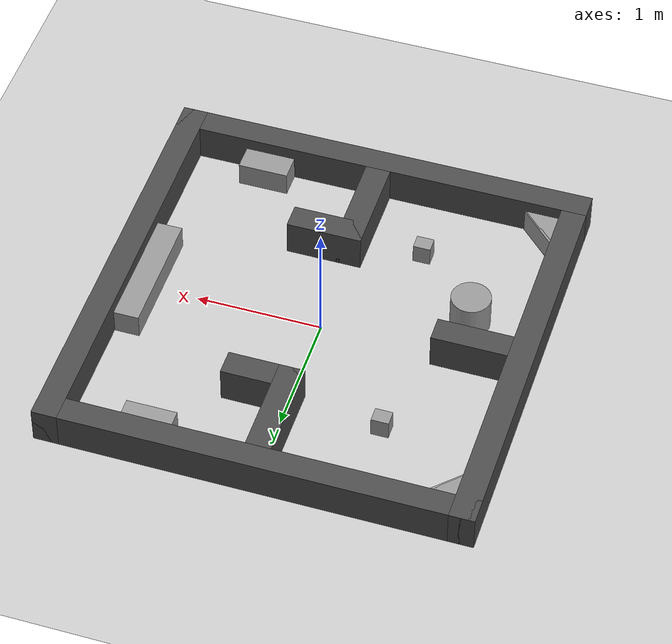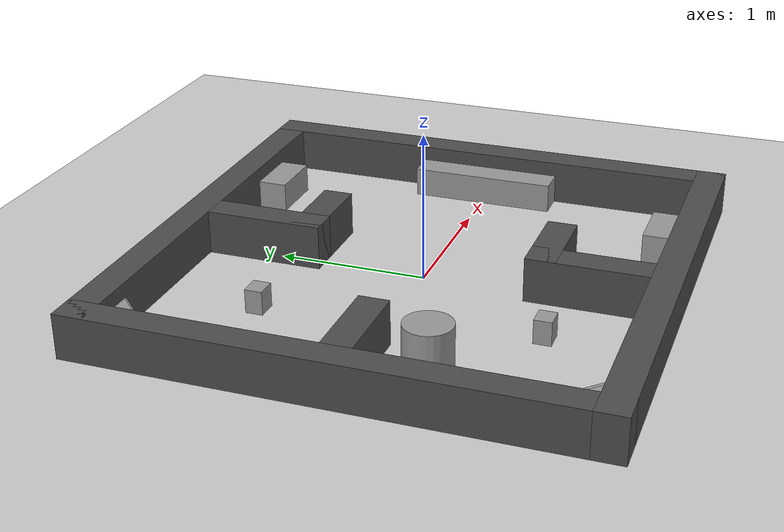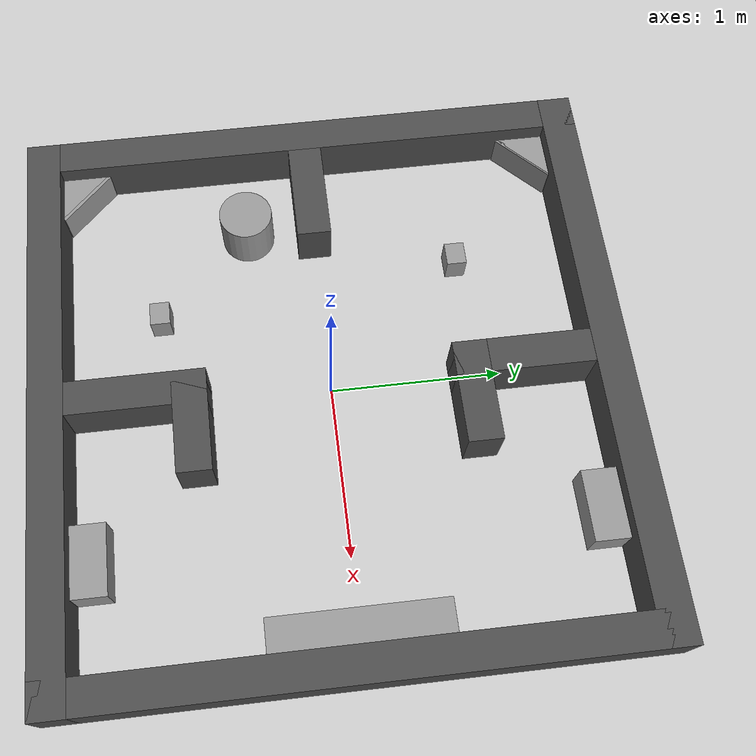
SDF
<sdf version="1.7">
 <world name="default">
  <light name="sun" type="directional">
   <pose>0 0 10 0 -0 0</pose>
   <diffuse>0.8 0.8 0.8 1</diffuse>
   <specular>0.1 0.1 0.1 1</specular>
   <attenuation>
    <range>1000</range>
    <constant>0.9</constant>
    <linear>0.01</linear>
    <quadratic>0.001</quadratic>
   </attenuation>
   <direction>-0.5 0.5 -1</direction>
   <spot><inner_angle>0</inner_angle><outer_angle>0</outer_angle><falloff>0</falloff></spot>
  </light>
  <model name="ground_plane">
   <static>1</static>
   <link name="link">
    <collision name="collision">
     <geometry><plane><normal>0 0 1</normal><size>100 100</size></plane></geometry>
     <surface><friction><ode><mu>100</mu><mu2>50</mu2></ode></friction></surface>
    </collision>
    <visual name="visual">
     <cast_shadows>0</cast_shadows>
     <geometry><plane><normal>0 0 1</normal><size>100 100</size></plane></geometry>
     <material>
      <script><uri>file://media/materials/scripts/gazebo.material</uri><name>Gazebo/Grey</name></script>
     </material>
    </visual>
   </link>
  </model>
  <gravity>0 0 -9.8</gravity>
  <magnetic_field>6e-06 2.3e-05 -4.2e-05</magnetic_field>
  <atmosphere type="adiabatic"/>
  <physics name="default_physics" default="0" type="ode">
   <max_step_size>0.001</max_step_size>
   <real_time_factor>1</real_time_factor>
   <real_time_update_rate>1000</real_time_update_rate>
  </physics>
  <scene><ambient>0.4 0.4 0.4 1</ambient><background>0.7 0.7 0.7 1</background><shadows>0</shadows></scene>
  <spherical_coordinates>
   <surface_model>EARTH_WGS84</surface_model>
   <latitude_deg>0</latitude_deg>
   <longitude_deg>0</longitude_deg>
   <elevation>0</elevation>
   <heading_deg>0</heading_deg>
  </spherical_coordinates>
  <model name="competition_room_final">
   <link name="Wall_13">
    <collision name="Wall_13_Collision">
     <geometry><box><size>3.4 0.2 0.3</size></box></geometry>
     <pose>0 0 0.15 0 -0 0</pose>
    </collision>
    <visual name="Wall_13_Visual">
     <pose>0 0 0.15 0 -0 0</pose>
     <geometry><box><size>3.4 0.2 0.3</size></box></geometry>
     <material>
      <script><uri>file://media/materials/scripts/gazebo.material</uri><name>Gazebo/DarkGrey</name></script>
      <ambient>0 0 0 1</ambient>
     </material>
    </visual>
    <pose>1.6 0 0 0 0 -1.5708</pose>
   </link>
   <link name="Wall_14">
    <collision name="Wall_14_Collision">
     <geometry><box><size>3.4 0.2 0.3</size></box></geometry>
     <pose>0 0 0.15 0 -0 0</pose>
    </collision>
    <visual name="Wall_14_Visual">
     <pose>0 0 0.15 0 -0 0</pose>
     <geometry><box><size>3.4 0.2 0.3</size></box></geometry>
     <material>
      <script><uri>file://media/materials/scripts/gazebo.material</uri><name>Gazebo/DarkGrey</name></script>
      <ambient>0 0 0 1</ambient>
     </material>
    </visual>
    <pose>0 -1.6 0 0 -0 3.14159</pose>
   </link>
   <link name="Wall_15">
    <collision name="Wall_15_Collision">
     <geometry><box><size>3.4 0.2 0.3</size></box></geometry>
     <pose>0 0 0.15 0 -0 0</pose>
    </collision>
    <visual name="Wall_15_Visual">
     <pose>0 0 0.15 0 -0 0</pose>
     <geometry><box><size>3.4 0.2 0.3</size></box></geometry>
     <material>
      <script><uri>file://media/materials/scripts/gazebo.material</uri><name>Gazebo/DarkGrey</name></script>
      <ambient>0 0 0 1</ambient>
     </material>
    </visual>
    <pose>-1.6 0 0 0 -0 1.5708</pose>
    <gravity>0</gravity>
   </link>
   <link name="Wall_16">
    <collision name="Wall_16_Collision">
     <geometry><box><size>3.4 0.2 0.3</size></box></geometry>
     <pose>0 0 0.15 0 -0 0</pose>
    </collision>
    <visual name="Wall_16_Visual">
     <pose>0 0 0.15 0 -0 0</pose>
     <geometry><box><size>3.4 0.2 0.3</size></box></geometry>
     <material>
      <script><uri>file://media/materials/scripts/gazebo.material</uri><name>Gazebo/DarkGrey</name></script>
      <ambient>0 0 0 1</ambient>
     </material>
    </visual>
    <pose>0 1.6 0 0 -0 0</pose>
   </link>
   <link name="Wall_20">
    <collision name="Wall_20_Collision">
     <geometry><box><size>0.8 0.2 0.3</size></box></geometry>
     <pose>0 0 0.15 0 -0 0</pose>
    </collision>
    <visual name="Wall_20_Visual">
     <pose>0 0 0.15 0 -0 0</pose>
     <geometry><box><size>0.8 0.2 0.3</size></box></geometry>
     <material>
      <script><uri>file://media/materials/scripts/gazebo.material</uri><name>Gazebo/DarkGrey</name></script>
      <ambient>0 0 0 1</ambient>
     </material>
    </visual>
    <pose>0 1.1 0 0 0 -1.5708</pose>
   </link>
   <link name="Wall_21">
    <collision name="Wall_21_Collision">
     <geometry><box><size>0.6 0.2 0.3</size></box></geometry>
     <pose>0 0 0.15 0 -0 0</pose>
    </collision>
    <visual name="Wall_21_Visual">
     <pose>0 0 0.15 0 -0 0</pose>
     <geometry><box><size>0.6 0.2 0.3</size></box></geometry>
     <material>
      <script><uri>file://media/materials/scripts/gazebo.material</uri><name>Gazebo/DarkGrey</name></script>
      <ambient>0 0 0 1</ambient>
     </material>
    </visual>
    <pose>0.2 0.8 0 0 -0 0</pose>
   </link>
   <link name="Wall_23">
    <collision name="Wall_23_Collision">
     <geometry><box><size>0.8 0.2 0.3</size></box></geometry>
     <pose>0 0 0.15 0 -0 0</pose>
    </collision>
    <visual name="Wall_23_Visual">
     <pose>0 0 0.15 0 -0 0</pose>
     <geometry><box><size>0.8 0.2 0.3</size></box></geometry>
     <material>
      <script><uri>file://media/materials/scripts/gazebo.material</uri><name>Gazebo/DarkGrey</name></script>
      <ambient>0 0 0 1</ambient>
     </material>
    </visual>
    <pose>0 -1.1 0 0 -0 1.5708</pose>
   </link>
   <link name="Wall_24">
    <collision name="Wall_24_Collision">
     <geometry><box><size>0.6 0.2 0.3</size></box></geometry>
     <pose>0 0 0.15 0 -0 0</pose>
    </collision>
    <visual name="Wall_24_Visual">
     <pose>0 0 0.15 0 -0 0</pose>
     <geometry><box><size>0.6 0.2 0.3</size></box></geometry>
     <material>
      <script><uri>file://media/materials/scripts/gazebo.material</uri><name>Gazebo/DarkGrey</name></script>
      <ambient>0 0 0 1</ambient>
     </material>
    </visual>
    <pose>0.2 -0.8 0 0 -0 0</pose>
   </link>
   <link name="Wall_26">
    <collision name="Wall_26_Collision">
     <geometry><box><size>0.6 0.2 0.3</size></box></geometry>
     <pose>0 0 0.15 0 -0 0</pose>
    </collision>
    <visual name="Wall_26_Visual">
     <pose>0 0 0.15 0 -0 0</pose>
     <geometry><box><size>0.6 0.2 0.3</size></box></geometry>
     <material>
      <script><uri>file://media/materials/scripts/gazebo.material</uri><name>Gazebo/DarkGrey</name></script>
      <ambient>0 0 0 1</ambient>
     </material>
    </visual>
    <pose>-1.2 0 0 0 -0 0</pose>
   </link>
   <static>1</static>
  </model>
  <model name="object_stand">
   <link name="link">
    <pose>1.4 0 0.1 0 -0 0</pose>
    <inertial>
     <mass>1</mass>
     <inertia>
      <ixx>0.166667</ixx>
      <ixy>0</ixy>
      <ixz>0</ixz>
      <iyy>0.166667</iyy>
      <iyz>0</iyz>
      <izz>0.166667</izz>
     </inertia>
    </inertial>
    <kinematic>1</kinematic>
    <visual name="visual">
     <geometry><box><size>0.2 1 0.2</size></box></geometry>
     <material>
      <script><name>Gazebo/Grey</name><uri>file://media/materials/scripts/gazebo.material</uri></script>
      <ambient>0.3 0.3 0.3 1</ambient>
      <diffuse>0.7 0.7 0.7 1</diffuse>
      <specular>0.01 0.01 0.01 1</specular>
      <emissive>0 0 0 1</emissive>
      <shader type="vertex"><normal_map>__default__</normal_map></shader>
     </material>
    </visual>
    <collision name="collision">
     <geometry><box><size>0.2 1 0.2</size></box></geometry>
     <surface>
      <friction>
       <ode><mu>1</mu><mu2>1</mu2><fdir1>0 0 0</fdir1><slip1>0</slip1><slip2>0</slip2></ode>
       <torsional>
        <coefficient>1</coefficient>
        <patch_radius>0</patch_radius>
        <surface_radius>0</surface_radius>
        <use_patch_radius>1</use_patch_radius>
        <ode><slip>0</slip></ode>
       </torsional>
      </friction>
      <bounce><restitution_coefficient>0</restitution_coefficient><threshold>1e+06</threshold></bounce>
      <contact>
       <collide_without_contact>0</collide_without_contact>
       <collide_without_contact_bitmask>1</collide_without_contact_bitmask>
       <collide_bitmask>1</collide_bitmask>
       <ode>
        <soft_cfm>0</soft_cfm>
        <soft_erp>0.2</soft_erp>
        <kp>1e+13</kp>
        <kd>1</kd>
        <max_vel>0.01</max_vel>
        <min_depth>0</min_depth>
       </ode>
       <bullet>
        <split_impulse>1</split_impulse>
        <split_impulse_penetration_threshold>-0.01</split_impulse_penetration_threshold>
        <soft_cfm>0</soft_cfm>
        <soft_erp>0.2</soft_erp>
        <kp>1e+13</kp>
        <kd>1</kd>
       </bullet>
      </contact>
     </surface>
    </collision>
   </link>
   <static>0</static>
  </model>
  <model name="unit_stand_1">
   <link name="link">
    <pose>0.9 1.4 0.1 0 -0 1.5708</pose>
    <inertial>
     <mass>1</mass>
     <inertia>
      <ixx>0.166667</ixx>
      <ixy>0</ixy>
      <ixz>0</ixz>
      <iyy>0.166667</iyy>
      <iyz>0</iyz>
      <izz>0.166667</izz>
     </inertia>
    </inertial>
    <kinematic>1</kinematic>
    <visual name="visual">
     <geometry><box><size>0.2 0.4 0.2</size></box></geometry>
     <material>
      <script><name>Gazebo/Grey</name><uri>file://media/materials/scripts/gazebo.material</uri></script>
      <ambient>0.3 0.3 0.3 1</ambient>
      <diffuse>0.7 0.7 0.7 1</diffuse>
      <specular>0.01 0.01 0.01 1</specular>
      <emissive>0 0 0 1</emissive>
      <shader type="vertex"><normal_map>__default__</normal_map></shader>
     </material>
    </visual>
    <collision name="collision">
     <geometry><box><size>0.2 0.4 0.2</size></box></geometry>
     <surface>
      <friction>
       <ode><mu>1</mu><mu2>1</mu2><fdir1>0 0 0</fdir1><slip1>0</slip1><slip2>0</slip2></ode>
       <torsional>
        <coefficient>1</coefficient>
        <patch_radius>0</patch_radius>
        <surface_radius>0</surface_radius>
        <use_patch_radius>1</use_patch_radius>
        <ode><slip>0</slip></ode>
       </torsional>
      </friction>
      <bounce><restitution_coefficient>0</restitution_coefficient><threshold>1e+06</threshold></bounce>
      <contact>
       <collide_without_contact>0</collide_without_contact>
       <collide_without_contact_bitmask>1</collide_without_contact_bitmask>
       <collide_bitmask>1</collide_bitmask>
       <ode>
        <soft_cfm>0</soft_cfm>
        <soft_erp>0.2</soft_erp>
        <kp>1e+13</kp>
        <kd>1</kd>
        <max_vel>0.01</max_vel>
        <min_depth>0</min_depth>
       </ode>
       <bullet>
        <split_impulse>1</split_impulse>
        <split_impulse_penetration_threshold>-0.01</split_impulse_penetration_threshold>
        <soft_cfm>0</soft_cfm>
        <soft_erp>0.2</soft_erp>
        <kp>1e+13</kp>
        <kd>1</kd>
       </bullet>
      </contact>
     </surface>
    </collision>
   </link>
   <static>0</static>
  </model>
  <model name="unit_stand_1_1">
   <link name="link">
    <pose>0.9 -1.4 0.1 0 -0 1.5708</pose>
    <inertial>
     <mass>1</mass>
     <inertia>
      <ixx>0.166667</ixx>
      <ixy>0</ixy>
      <ixz>0</ixz>
      <iyy>0.166667</iyy>
      <iyz>0</iyz>
      <izz>0.166667</izz>
     </inertia>
    </inertial>
    <kinematic>1</kinematic>
    <visual name="visual">
     <geometry><box><size>0.2 0.4 0.2</size></box></geometry>
     <material>
      <script><name>Gazebo/Grey</name><uri>file://media/materials/scripts/gazebo.material</uri></script>
      <ambient>0.3 0.3 0.3 1</ambient>
      <diffuse>0.7 0.7 0.7 1</diffuse>
      <specular>0.01 0.01 0.01 1</specular>
      <emissive>0 0 0 1</emissive>
      <shader type="vertex"><normal_map>__default__</normal_map></shader>
     </material>
    </visual>
    <collision name="collision">
     <geometry><box><size>0.2 0.4 0.2</size></box></geometry>
     <surface>
      <friction>
       <ode><mu>1</mu><mu2>1</mu2><fdir1>0 0 0</fdir1><slip1>0</slip1><slip2>0</slip2></ode>
       <torsional>
        <coefficient>1</coefficient>
        <patch_radius>0</patch_radius>
        <surface_radius>0</surface_radius>
        <use_patch_radius>1</use_patch_radius>
        <ode><slip>0</slip></ode>
       </torsional>
      </friction>
      <bounce><restitution_coefficient>0</restitution_coefficient><threshold>1e+06</threshold></bounce>
      <contact>
       <collide_without_contact>0</collide_without_contact>
       <collide_without_contact_bitmask>1</collide_without_contact_bitmask>
       <collide_bitmask>1</collide_bitmask>
       <ode>
        <soft_cfm>0</soft_cfm>
        <soft_erp>0.2</soft_erp>
        <kp>1e+13</kp>
        <kd>1</kd>
        <max_vel>0.01</max_vel>
        <min_depth>0</min_depth>
       </ode>
       <bullet>
        <split_impulse>1</split_impulse>
        <split_impulse_penetration_threshold>-0.01</split_impulse_penetration_threshold>
        <soft_cfm>0</soft_cfm>
        <soft_erp>0.2</soft_erp>
        <kp>1e+13</kp>
        <kd>1</kd>
       </bullet>
      </contact>
     </surface>
    </collision>
   </link>
   <static>0</static>
  </model>
  <model name="unit_stand_2">
   <link name="link">
    <pose>-1.36 1.36 0.1 0 -0 2.35619</pose>
    <inertial>
     <mass>1</mass>
     <inertia>
      <ixx>0.166667</ixx>
      <ixy>0</ixy>
      <ixz>0</ixz>
      <iyy>0.166667</iyy>
      <iyz>0</iyz>
      <izz>0.166667</izz>
     </inertia>
    </inertial>
    <kinematic>1</kinematic>
    <visual name="visual_1">
     <geometry><box><size>0.2 0.4 0.02</size></box></geometry>
     <material>
      <script><name>Gazebo/Grey</name><uri>file://media/materials/scripts/gazebo.material</uri></script>
      <ambient>0.3 0.3 0.3 1</ambient>
      <diffuse>0.7 0.7 0.7 1</diffuse>
      <specular>0.01 0.01 0.01 1</specular>
      <emissive>0 0 0 1</emissive>
      <shader type="vertex"><normal_map>__default__</normal_map></shader>
     </material>
     <pose>0.1 0 0.09 0 -0 0</pose>
    </visual>
    <visual name="visual">
     <geometry><box><size>0.02 0.4 0.2</size></box></geometry>
     <material>
      <script><name>Gazebo/Grey</name><uri>file://media/materials/scripts/gazebo.material</uri></script>
      <ambient>0.3 0.3 0.3 1</ambient>
      <diffuse>0.7 0.7 0.7 1</diffuse>
      <specular>0.01 0.01 0.01 1</specular>
      <emissive>0 0 0 1</emissive>
      <shader type="vertex"><normal_map>__default__</normal_map></shader>
     </material>
    </visual>
    <collision name="collision_1">
     <pose>0.1 0 0.09 0 -0 0</pose>
     <geometry><box><size>0.2 0.4 0.02</size></box></geometry>
     <surface>
      <friction>
       <ode><mu>1</mu><mu2>1</mu2><fdir1>0 0 0</fdir1><slip1>0</slip1><slip2>0</slip2></ode>
       <torsional>
        <coefficient>1</coefficient>
        <patch_radius>0</patch_radius>
        <surface_radius>0</surface_radius>
        <use_patch_radius>1</use_patch_radius>
        <ode><slip>0</slip></ode>
       </torsional>
      </friction>
      <bounce><restitution_coefficient>0</restitution_coefficient><threshold>1e+06</threshold></bounce>
      <contact>
       <collide_without_contact>0</collide_without_contact>
       <collide_without_contact_bitmask>1</collide_without_contact_bitmask>
       <collide_bitmask>1</collide_bitmask>
       <ode>
        <soft_cfm>0</soft_cfm>
        <soft_erp>0.2</soft_erp>
        <kp>1e+13</kp>
        <kd>1</kd>
        <max_vel>0.01</max_vel>
        <min_depth>0</min_depth>
       </ode>
       <bullet>
        <split_impulse>1</split_impulse>
        <split_impulse_penetration_threshold>-0.01</split_impulse_penetration_threshold>
        <soft_cfm>0</soft_cfm>
        <soft_erp>0.2</soft_erp>
        <kp>1e+13</kp>
        <kd>1</kd>
       </bullet>
      </contact>
     </surface>
    </collision>
    <collision name="collision">
     <geometry><box><size>0.02 0.4 0.2</size></box></geometry>
     <surface>
      <friction>
       <ode><mu>1</mu><mu2>1</mu2><fdir1>0 0 0</fdir1><slip1>0</slip1><slip2>0</slip2></ode>
       <torsional>
        <coefficient>1</coefficient>
        <patch_radius>0</patch_radius>
        <surface_radius>0</surface_radius>
        <use_patch_radius>1</use_patch_radius>
        <ode><slip>0</slip></ode>
       </torsional>
      </friction>
      <bounce><restitution_coefficient>0</restitution_coefficient><threshold>1e+06</threshold></bounce>
      <contact>
       <collide_without_contact>0</collide_without_contact>
       <collide_without_contact_bitmask>1</collide_without_contact_bitmask>
       <collide_bitmask>1</collide_bitmask>
       <ode>
        <soft_cfm>0</soft_cfm>
        <soft_erp>0.2</soft_erp>
        <kp>1e+13</kp>
        <kd>1</kd>
        <max_vel>0.01</max_vel>
        <min_depth>0</min_depth>
       </ode>
       <bullet>
        <split_impulse>1</split_impulse>
        <split_impulse_penetration_threshold>-0.01</split_impulse_penetration_threshold>
        <soft_cfm>0</soft_cfm>
        <soft_erp>0.2</soft_erp>
        <kp>1e+13</kp>
        <kd>1</kd>
       </bullet>
      </contact>
     </surface>
    </collision>
   </link>
   <static>0</static>
  </model>
  <model name="unit_stand_2_1">
   <link name="link">
    <pose>-1.36 -1.36 0.1 0 0 -2.35619</pose>
    <inertial>
     <mass>1</mass>
     <inertia>
      <ixx>0.166667</ixx>
      <ixy>0</ixy>
      <ixz>0</ixz>
      <iyy>0.166667</iyy>
      <iyz>0</iyz>
      <izz>0.166667</izz>
     </inertia>
    </inertial>
    <kinematic>1</kinematic>
    <visual name="visual_1">
     <geometry><box><size>0.2 0.4 0.02</size></box></geometry>
     <material>
      <script><name>Gazebo/Grey</name><uri>file://media/materials/scripts/gazebo.material</uri></script>
      <ambient>0.3 0.3 0.3 1</ambient>
      <diffuse>0.7 0.7 0.7 1</diffuse>
      <specular>0.01 0.01 0.01 1</specular>
      <emissive>0 0 0 1</emissive>
      <shader type="vertex"><normal_map>__default__</normal_map></shader>
     </material>
     <pose>0.1 0 0.09 0 -0 0</pose>
    </visual>
    <visual name="visual">
     <geometry><box><size>0.02 0.4 0.2</size></box></geometry>
     <material>
      <script><name>Gazebo/Grey</name><uri>file://media/materials/scripts/gazebo.material</uri></script>
      <ambient>0.3 0.3 0.3 1</ambient>
      <diffuse>0.7 0.7 0.7 1</diffuse>
      <specular>0.01 0.01 0.01 1</specular>
      <emissive>0 0 0 1</emissive>
      <shader type="vertex"><normal_map>__default__</normal_map></shader>
     </material>
    </visual>
    <collision name="collision_1">
     <pose>0.1 0 0.09 0 -0 0</pose>
     <geometry><box><size>0.2 0.4 0.02</size></box></geometry>
     <surface>
      <friction>
       <ode><mu>1</mu><mu2>1</mu2><fdir1>0 0 0</fdir1><slip1>0</slip1><slip2>0</slip2></ode>
       <torsional>
        <coefficient>1</coefficient>
        <patch_radius>0</patch_radius>
        <surface_radius>0</surface_radius>
        <use_patch_radius>1</use_patch_radius>
        <ode><slip>0</slip></ode>
       </torsional>
      </friction>
      <bounce><restitution_coefficient>0</restitution_coefficient><threshold>1e+06</threshold></bounce>
      <contact>
       <collide_without_contact>0</collide_without_contact>
       <collide_without_contact_bitmask>1</collide_without_contact_bitmask>
       <collide_bitmask>1</collide_bitmask>
       <ode>
        <soft_cfm>0</soft_cfm>
        <soft_erp>0.2</soft_erp>
        <kp>1e+13</kp>
        <kd>1</kd>
        <max_vel>0.01</max_vel>
        <min_depth>0</min_depth>
       </ode>
       <bullet>
        <split_impulse>1</split_impulse>
        <split_impulse_penetration_threshold>-0.01</split_impulse_penetration_threshold>
        <soft_cfm>0</soft_cfm>
        <soft_erp>0.2</soft_erp>
        <kp>1e+13</kp>
        <kd>1</kd>
       </bullet>
      </contact>
     </surface>
    </collision>
    <collision name="collision">
     <geometry><box><size>0.02 0.4 0.2</size></box></geometry>
     <surface>
      <friction>
       <ode><mu>1</mu><mu2>1</mu2><fdir1>0 0 0</fdir1><slip1>0</slip1><slip2>0</slip2></ode>
       <torsional>
        <coefficient>1</coefficient>
        <patch_radius>0</patch_radius>
        <surface_radius>0</surface_radius>
        <use_patch_radius>1</use_patch_radius>
        <ode><slip>0</slip></ode>
       </torsional>
      </friction>
      <bounce><restitution_coefficient>0</restitution_coefficient><threshold>1e+06</threshold></bounce>
      <contact>
       <collide_without_contact>0</collide_without_contact>
       <collide_without_contact_bitmask>1</collide_without_contact_bitmask>
       <collide_bitmask>1</collide_bitmask>
       <ode>
        <soft_cfm>0</soft_cfm>
        <soft_erp>0.2</soft_erp>
        <kp>1e+13</kp>
        <kd>1</kd>
        <max_vel>0.01</max_vel>
        <min_depth>0</min_depth>
       </ode>
       <bullet>
        <split_impulse>1</split_impulse>
        <split_impulse_penetration_threshold>-0.01</split_impulse_penetration_threshold>
        <soft_cfm>0</soft_cfm>
        <soft_erp>0.2</soft_erp>
        <kp>1e+13</kp>
        <kd>1</kd>
       </bullet>
      </contact>
     </surface>
    </collision>
   </link>
   <static>0</static>
  </model>
  <audio><device>default</device></audio>
  <model name="unit_cylinder">
   <pose>-1.07738 -0.398321 0.146322 -0 -0 -0</pose>
   <link name="link">
    <inertial>
     <mass>1</mass>
     <inertia><ixx>0.145833</ixx><ixy>0</ixy><ixz>0</ixz><iyy>0.145833</iyy><iyz>0</iyz><izz>0.125</izz></inertia>
    </inertial>
    <collision name="collision">
     <geometry><cylinder><radius>0.157575</radius><length>0.292644</length></cylinder></geometry>
    </collision>
    <visual name="visual">
     <geometry><cylinder><radius>0.157575</radius><length>0.292644</length></cylinder></geometry>
     <material>
      <script><name>Gazebo/Grey</name><uri>file://media/materials/scripts/gazebo.material</uri></script>
     </material>
    </visual>
   </link>
  </model>
  <model name="unit_box">
   <pose>-0.53922 -0.958465 0.080676 0 -6e-06 -1.8e-05</pose>
   <link name="link">
    <inertial>
     <mass>1</mass>
     <inertia>
      <ixx>0.166667</ixx>
      <ixy>0</ixy>
      <ixz>0</ixz>
      <iyy>0.166667</iyy>
      <iyz>0</iyz>
      <izz>0.166667</izz>
     </inertia>
    </inertial>
    <collision name="collision">
     <geometry><box><size>0.138316 0.116755 0.161352</size></box></geometry>
    </collision>
    <visual name="visual">
     <geometry><box><size>0.138316 0.116755 0.161352</size></box></geometry>
     <material>
      <script><name>Gazebo/Grey</name><uri>file://media/materials/scripts/gazebo.material</uri></script>
     </material>
    </visual>
   </link>
  </model>
  <model name="unit_box_clone">
   <pose>-0.745341 0.839661 0.080676 0 -6e-06 -1.8e-05</pose>
   <link name="link">
    <inertial>
     <mass>1</mass>
     <inertia>
      <ixx>0.166667</ixx>
      <ixy>0</ixy>
      <ixz>0</ixz>
      <iyy>0.166667</iyy>
      <iyz>0</iyz>
      <izz>0.166667</izz>
     </inertia>
    </inertial>
    <collision name="collision">
     <geometry><box><size>0.138316 0.116755 0.161352</size></box></geometry>
    </collision>
    <visual name="visual">
     <geometry><box><size>0.138316 0.116755 0.161352</size></box></geometry>
     <material>
      <script><name>Gazebo/Grey</name><uri>file://media/materials/scripts/gazebo.material</uri></script>
     </material>
    </visual>
   </link>
  </model>
 </world>
</sdf>
